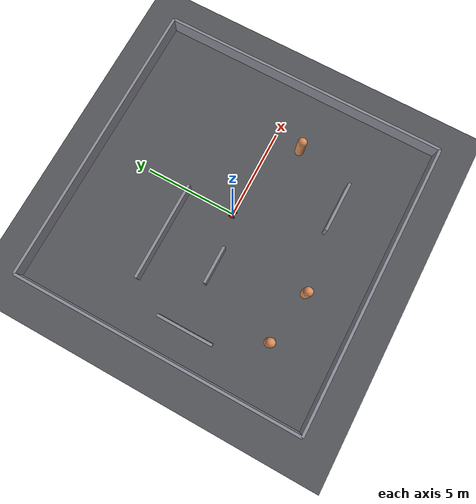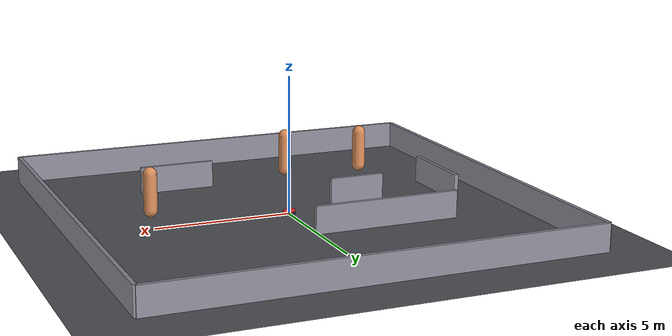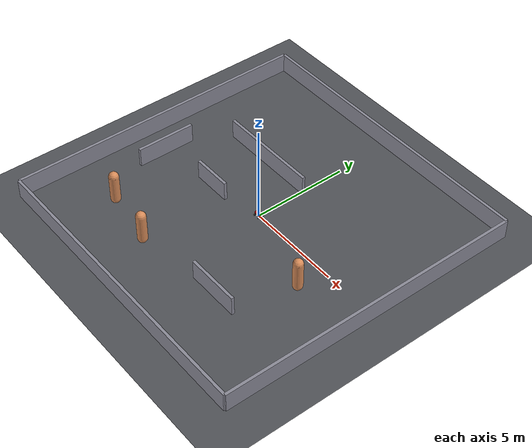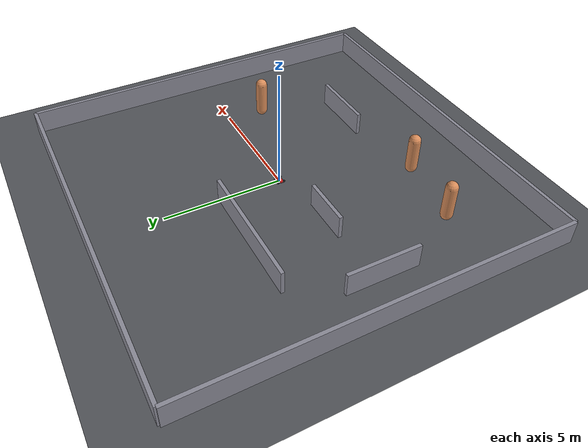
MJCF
<mujoco model="ackermann_car_room">
  <compiler angle="radian"/>
  <option timestep="0.002" gravity="0 0 -9.81" iterations="4" cone="pyramidal"/>

  <default>
    <joint damping="0.05"/>
    <geom friction="2.0 0.1 0.1" contype="1" conaffinity="1"/>
  </default>

  <worldbody>
    <light name="ceiling" pos="0 0 6" dir="0 0 -1" diffuse="0.8 0.8 0.8"/>
    <geom name="floor" type="plane" size="10.0 10.0 0.1" rgba="0.32 0.33 0.35 1"/>
    <geom name="wall_0" type="box" size="8.0000 0.0750 0.5000" pos="0.0000 -8.0000 0.5000" rgba="0.55 0.55 0.60 1"/>
    <geom name="wall_1" type="box" size="8.0000 0.0750 0.5000" pos="0.0000 8.0000 0.5000" rgba="0.55 0.55 0.60 1"/>
    <geom name="wall_2" type="box" size="0.0750 8.0000 0.5000" pos="-8.0000 0.0000 0.5000" rgba="0.55 0.55 0.60 1"/>
    <geom name="wall_3" type="box" size="0.0750 8.0000 0.5000" pos="8.0000 0.0000 0.5000" rgba="0.55 0.55 0.60 1"/>
    <geom name="wall_4" type="box" size="1.4069 0.0750 0.5000" pos="2.7186 -4.6430 0.5000" rgba="0.55 0.55 0.60 1"/>
    <geom name="wall_5" type="box" size="0.0750 1.5334 0.5000" pos="-6.3509 -0.7804 0.5000" rgba="0.55 0.55 0.60 1"/>
    <geom name="wall_6" type="box" size="1.0325 0.0750 0.5000" pos="-2.8842 -0.5226 0.5000" rgba="0.55 0.55 0.60 1"/>
    <geom name="wall_7" type="box" size="2.7056 0.0750 0.5000" pos="-2.5997 2.6107 0.5000" rgba="0.55 0.55 0.60 1"/>
    <body name="human_0" mocap="true" pos="-1.9376 -5.1878 0.9130">
      <geom name="human_geom_0" type="capsule" size="0.250 0.663" rgba="0.85 0.55 0.35 1" contype="0" conaffinity="0"/>
    </body>
    <body name="human_1" mocap="true" pos="-4.9174 -4.6813 0.9130">
      <geom name="human_geom_1" type="capsule" size="0.250 0.663" rgba="0.85 0.55 0.35 1" contype="0" conaffinity="0"/>
    </body>
    <body name="human_2" mocap="true" pos="4.6928 -1.5190 0.9130">
      <geom name="human_geom_2" type="capsule" size="0.250 0.663" rgba="0.85 0.55 0.35 1" contype="0" conaffinity="0"/>
    </body>

    <body name="chassis" pos="0 0 0.1">
      <freejoint name="chassis_free"/>
      <geom name="chassis_geom" type="capsule" size="0.09" fromto="-0.15 0 0 0.15 0 0" mass="3.0" rgba="0.8 0.1 0.1 1"/>

      <body name="wheel_fl" pos="0.1483 0.115 -0.05">
        <joint name="steer_fl" type="hinge" axis="0 0 1" range="-0.6 0.6" limited="true" damping="1.0"/>
        <geom name="knuckle_fl_geom" type="sphere" size="0.01" mass="0.05" rgba="0.2 0.2 0.2 1"/>
        <body name="wheel_fl_spin">
          <joint name="spin_fl" type="hinge" axis="0 1 0" damping="0.001"/>
          <geom name="wheel_fl_geom" type="capsule" size="0.05" fromto="0 -0.0215 0 0 0.0215 0" mass="0.1" rgba="0.1 0.1 0.1 1"/>
        </body>
      </body>
      <body name="wheel_fr" pos="0.1483 -0.115 -0.05">
        <joint name="steer_fr" type="hinge" axis="0 0 1" range="-0.6 0.6" limited="true" damping="1.0"/>
        <geom name="knuckle_fr_geom" type="sphere" size="0.01" mass="0.05" rgba="0.2 0.2 0.2 1"/>
        <body name="wheel_fr_spin">
          <joint name="spin_fr" type="hinge" axis="0 1 0" damping="0.001"/>
          <geom name="wheel_fr_geom" type="capsule" size="0.05" fromto="0 -0.0215 0 0 0.0215 0" mass="0.1" rgba="0.1 0.1 0.1 1"/>
        </body>
      </body>
      <body name="wheel_rl" pos="-0.1483 0.115 -0.05">
        <joint name="spin_rl" type="hinge" axis="0 1 0" damping="0.001"/>
        <geom name="wheel_rl_geom" type="capsule" size="0.05" fromto="0 -0.0215 0 0 0.0215 0" mass="0.1" rgba="0.1 0.1 0.1 1"/>
      </body>
      <body name="wheel_rr" pos="-0.1483 -0.115 -0.05">
        <joint name="spin_rr" type="hinge" axis="0 1 0" damping="0.001"/>
        <geom name="wheel_rr_geom" type="capsule" size="0.05" fromto="0 -0.0215 0 0 0.0215 0" mass="0.1" rgba="0.1 0.1 0.1 1"/>
      </body>
    </body>
  </worldbody>

  <equality>
    <joint joint1="steer_fl" joint2="steer_fr"/>
  </equality>

  <actuator>
    <position name="steer" joint="steer_fl" kp="80" ctrlrange="-0.6 0.6" forcerange="-20 20"/>
    <motor name="throttle_rl" joint="spin_rl" gear="0.78" ctrlrange="-1 1"/>
    <motor name="throttle_rr" joint="spin_rr" gear="0.78" ctrlrange="-1 1"/>
  </actuator>
</mujoco>
